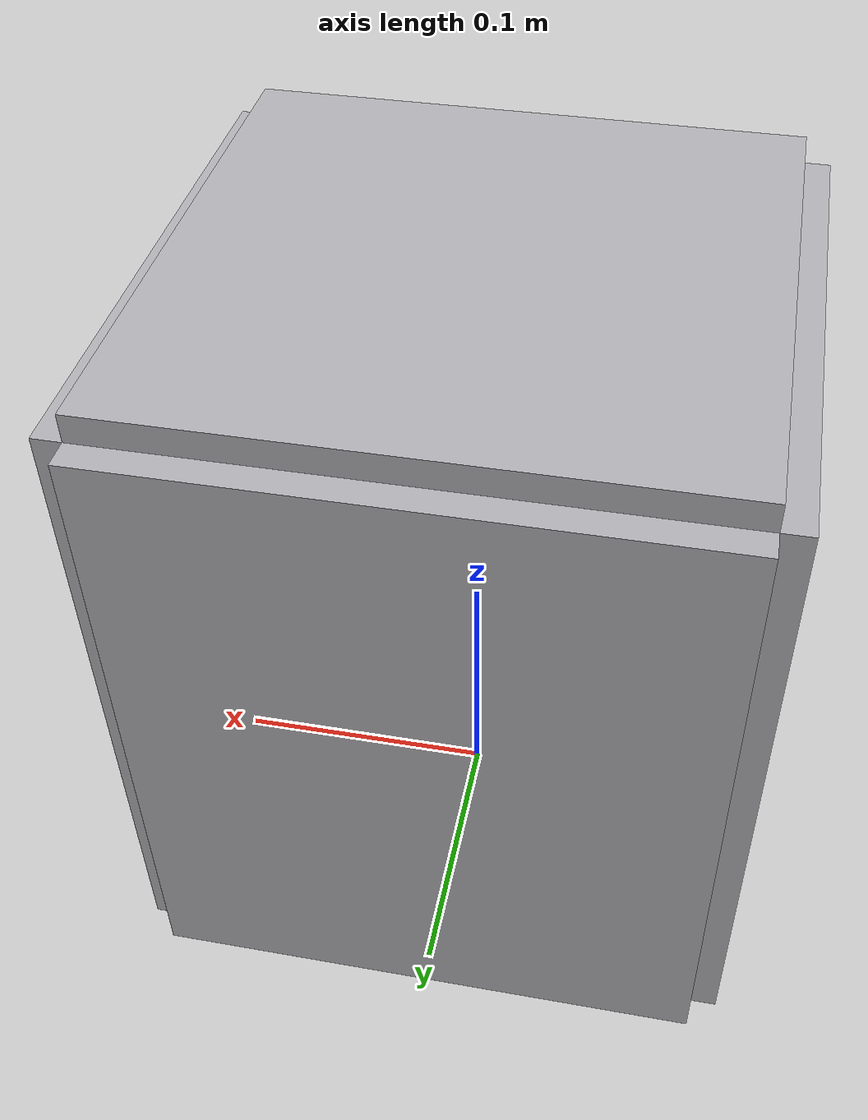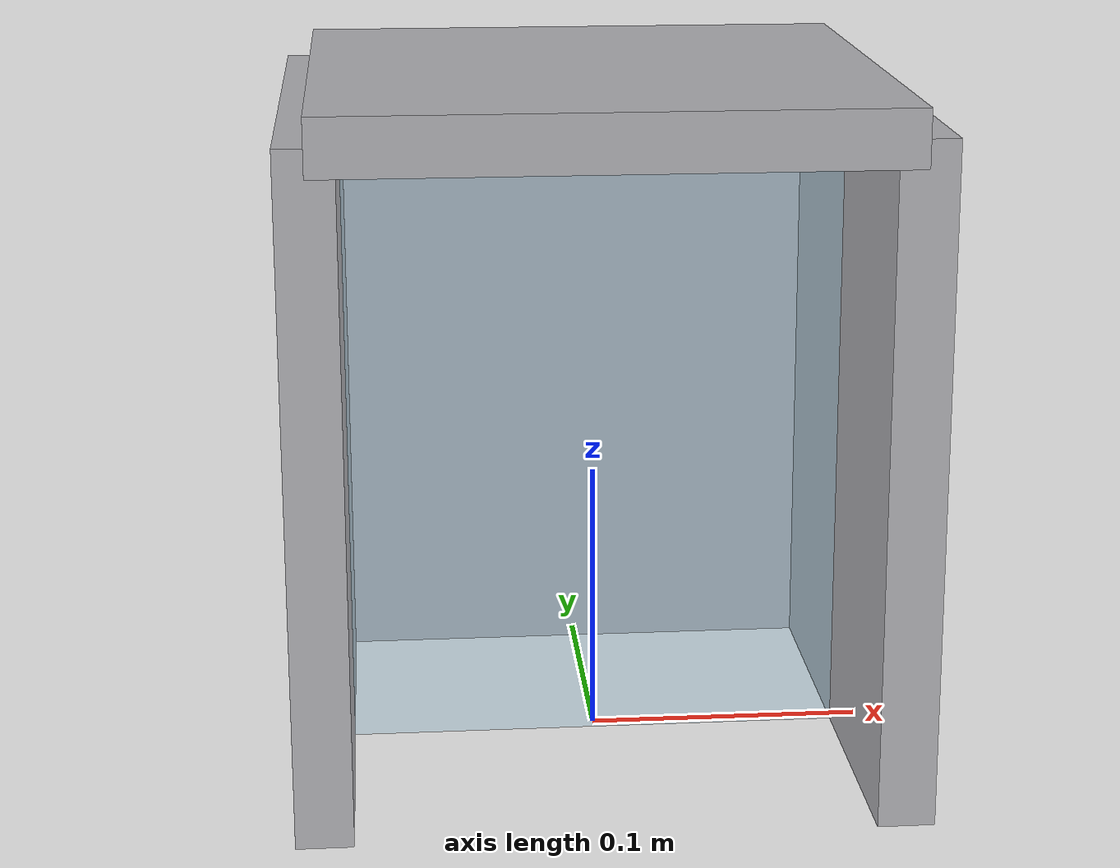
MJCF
<?xml version="1.0" encoding="utf-8"?>
<mujoco model="evidence_drying_cabinet">
  <compiler angle="radian" autolimits="true"/>
  <default>
    <default class="body"><geom contype="1" conaffinity="1"/></default>
  </default>
  <worldbody>
    <body name="base">
      <geom type="box" size="0.1 0.01 0.12" pos="0 0.1 0.12" rgba="0.7 0.7 0.72 1" class="body"/>
      <geom type="box" size="0.01 0.1 0.12" pos="-0.1 0 0.12" rgba="0.7 0.7 0.72 1" class="body"/>
      <geom type="box" size="0.01 0.1 0.12" pos="0.1 0 0.12" rgba="0.7 0.7 0.72 1" class="body"/>
      <geom type="box" size="0.1 0.1 0.01" pos="0 0 0.24" rgba="0.7 0.7 0.72 1" class="body"/>
      <body name="door" pos="-0.1 0.0 0.12">
        <joint name="door_joint" type="hinge" axis="0 0 1" range="0 1.8" damping="0.6" frictionloss="0.3"/>
  <geom type="box" size="0.1 0.005 0.12" pos="0.1 0 0" rgba="0.6 0.8 0.9 0.35" class="body"/>
      </body>
    </body>
  </worldbody>
</mujoco>
